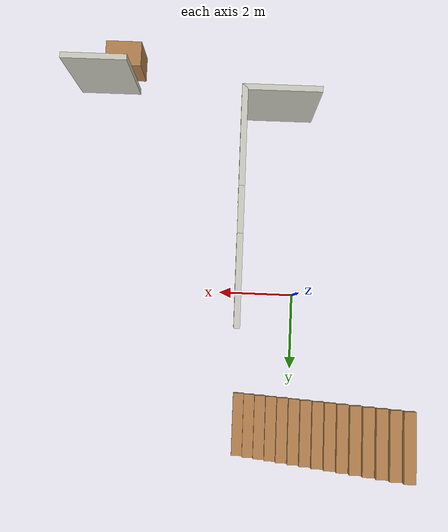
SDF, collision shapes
<sdf version="1.6">
 <model name="teknopark">
  <link name="Stairs_0">
   <inertial>
    <mass>1</mass>
    <inertia><ixx>1</ixx><ixy>0</ixy><ixz>0</ixz><iyy>1</iyy><iyz>0</iyz><izz>1</izz></inertia>
   </inertial>
   <visual name="Stairs_0_Visual_1">
    <pose>1.08758 3.51237 0.25 0 0 -1.5708</pose>
    <geometry><box><size>1.64 0.285333 0.166667</size></box></geometry>
    <material>
     <script><uri>file://media/materials/scripts/gazebo.material</uri><name>Gazebo/WoodFloor</name></script>
     <ambient>1 1 1 1</ambient>
     <diffuse>0.7 0.7 0.7 1</diffuse>
     <specular>0.01 0.01 0.01 1</specular>
     <emissive>0 0 0 1</emissive>
     <shader type="vertex"><normal_map>__default__</normal_map></shader>
    </material>
   </visual>
   <visual name="Stairs_0_Visual_14">
    <pose>-2.62175 3.51237 2.41667 0 0 -1.5708</pose>
    <geometry><box><size>1.64 0.285333 0.166667</size></box></geometry>
    <material>
     <script><uri>file://media/materials/scripts/gazebo.material</uri><name>Gazebo/WoodFloor</name></script>
     <ambient>1 1 1 1</ambient>
     <diffuse>0.7 0.7 0.7 1</diffuse>
     <specular>0.01 0.01 0.01 1</specular>
     <emissive>0 0 0 1</emissive>
     <shader type="vertex"><normal_map>__default__</normal_map></shader>
    </material>
   </visual>
   <visual name="Stairs_0_Visual_2">
    <pose>0.802247 3.51237 0.416667 0 0 -1.5708</pose>
    <geometry><box><size>1.64 0.285333 0.166667</size></box></geometry>
    <material>
     <script><uri>file://media/materials/scripts/gazebo.material</uri><name>Gazebo/WoodFloor</name></script>
     <ambient>1 1 1 1</ambient>
     <diffuse>0.7 0.7 0.7 1</diffuse>
     <specular>0.01 0.01 0.01 1</specular>
     <emissive>0 0 0 1</emissive>
     <shader type="vertex"><normal_map>__default__</normal_map></shader>
    </material>
   </visual>
   <visual name="Stairs_0_Visual_13">
    <pose>-2.33642 3.51237 2.25 0 0 -1.5708</pose>
    <geometry><box><size>1.64 0.285333 0.166667</size></box></geometry>
    <material>
     <script><uri>file://media/materials/scripts/gazebo.material</uri><name>Gazebo/WoodFloor</name></script>
     <ambient>1 1 1 1</ambient>
     <diffuse>0.7 0.7 0.7 1</diffuse>
     <specular>0.01 0.01 0.01 1</specular>
     <emissive>0 0 0 1</emissive>
     <shader type="vertex"><normal_map>__default__</normal_map></shader>
    </material>
   </visual>
   <visual name="Stairs_0_Visual_7">
    <pose>-0.62442 3.51237 1.25 0 0 -1.5708</pose>
    <geometry><box><size>1.64 0.285333 0.166667</size></box></geometry>
    <material>
     <script><uri>file://media/materials/scripts/gazebo.material</uri><name>Gazebo/WoodFloor</name></script>
     <ambient>1 1 1 1</ambient>
     <diffuse>0.7 0.7 0.7 1</diffuse>
     <specular>0.01 0.01 0.01 1</specular>
     <emissive>0 0 0 1</emissive>
     <shader type="vertex"><normal_map>__default__</normal_map></shader>
    </material>
   </visual>
   <visual name="Stairs_0_Visual_4">
    <pose>0.23158 3.51237 0.75 0 0 -1.5708</pose>
    <geometry><box><size>1.64 0.285333 0.166667</size></box></geometry>
    <material>
     <script><uri>file://media/materials/scripts/gazebo.material</uri><name>Gazebo/WoodFloor</name></script>
     <ambient>1 1 1 1</ambient>
     <diffuse>0.7 0.7 0.7 1</diffuse>
     <specular>0.01 0.01 0.01 1</specular>
     <emissive>0 0 0 1</emissive>
     <shader type="vertex"><normal_map>__default__</normal_map></shader>
    </material>
   </visual>
   <visual name="Stairs_0_Visual_3">
    <pose>0.516914 3.51237 0.583333 0 0 -1.5708</pose>
    <geometry><box><size>1.64 0.285333 0.166667</size></box></geometry>
    <material>
     <script><uri>file://media/materials/scripts/gazebo.material</uri><name>Gazebo/WoodFloor</name></script>
     <ambient>1 1 1 1</ambient>
     <diffuse>0.7 0.7 0.7 1</diffuse>
     <specular>0.01 0.01 0.01 1</specular>
     <emissive>0 0 0 1</emissive>
     <shader type="vertex"><normal_map>__default__</normal_map></shader>
    </material>
   </visual>
   <visual name="Stairs_0_Visual_10">
    <pose>-1.48042 3.51237 1.75 0 0 -1.5708</pose>
    <geometry><box><size>1.64 0.285333 0.166667</size></box></geometry>
    <material>
     <script><uri>file://media/materials/scripts/gazebo.material</uri><name>Gazebo/WoodFloor</name></script>
     <ambient>1 1 1 1</ambient>
     <diffuse>0.7 0.7 0.7 1</diffuse>
     <specular>0.01 0.01 0.01 1</specular>
     <emissive>0 0 0 1</emissive>
     <shader type="vertex"><normal_map>__default__</normal_map></shader>
    </material>
   </visual>
   <visual name="Stairs_0_Visual_11">
    <pose>-1.76575 3.51237 1.91667 0 0 -1.5708</pose>
    <geometry><box><size>1.64 0.285333 0.166667</size></box></geometry>
    <material>
     <script><uri>file://media/materials/scripts/gazebo.material</uri><name>Gazebo/WoodFloor</name></script>
     <ambient>1 1 1 1</ambient>
     <diffuse>0.7 0.7 0.7 1</diffuse>
     <specular>0.01 0.01 0.01 1</specular>
     <emissive>0 0 0 1</emissive>
     <shader type="vertex"><normal_map>__default__</normal_map></shader>
    </material>
   </visual>
   <visual name="Stairs_0_Visual_12">
    <pose>-2.05109 3.51237 2.08333 0 0 -1.5708</pose>
    <geometry><box><size>1.64 0.285333 0.166667</size></box></geometry>
    <material>
     <script><uri>file://media/materials/scripts/gazebo.material</uri><name>Gazebo/WoodFloor</name></script>
     <ambient>1 1 1 1</ambient>
     <diffuse>0.7 0.7 0.7 1</diffuse>
     <specular>0.01 0.01 0.01 1</specular>
     <emissive>0 0 0 1</emissive>
     <shader type="vertex"><normal_map>__default__</normal_map></shader>
    </material>
   </visual>
   <visual name="Stairs_0_Visual_9">
    <pose>-1.19509 3.51237 1.58333 0 0 -1.5708</pose>
    <geometry><box><size>1.64 0.285333 0.166667</size></box></geometry>
    <material>
     <script><uri>file://media/materials/scripts/gazebo.material</uri><name>Gazebo/WoodFloor</name></script>
     <ambient>1 1 1 1</ambient>
     <diffuse>0.7 0.7 0.7 1</diffuse>
     <specular>0.01 0.01 0.01 1</specular>
     <emissive>0 0 0 1</emissive>
     <shader type="vertex"><normal_map>__default__</normal_map></shader>
    </material>
   </visual>
   <visual name="Stairs_0_Visual_5">
    <pose>-0.053754 3.51237 0.916667 0 0 -1.5708</pose>
    <geometry><box><size>1.64 0.285333 0.166667</size></box></geometry>
    <material>
     <script><uri>file://media/materials/scripts/gazebo.material</uri><name>Gazebo/WoodFloor</name></script>
     <ambient>1 1 1 1</ambient>
     <diffuse>0.7 0.7 0.7 1</diffuse>
     <specular>0.01 0.01 0.01 1</specular>
     <emissive>0 0 0 1</emissive>
     <shader type="vertex"><normal_map>__default__</normal_map></shader>
    </material>
   </visual>
   <visual name="Stairs_0_Visual_6">
    <pose>-0.339086 3.51237 1.08333 0 0 -1.5708</pose>
    <geometry><box><size>1.64 0.285333 0.166667</size></box></geometry>
    <material>
     <script><uri>file://media/materials/scripts/gazebo.material</uri><name>Gazebo/WoodFloor</name></script>
     <ambient>1 1 1 1</ambient>
     <diffuse>0.7 0.7 0.7 1</diffuse>
     <specular>0.01 0.01 0.01 1</specular>
     <emissive>0 0 0 1</emissive>
     <shader type="vertex"><normal_map>__default__</normal_map></shader>
    </material>
   </visual>
   <visual name="Stairs_0_Visual_0">
    <pose>1.37291 3.51237 0.083333 0 0 -1.5708</pose>
    <geometry><box><size>1.64 0.285333 0.166667</size></box></geometry>
    <material>
     <script><uri>file://media/materials/scripts/gazebo.material</uri><name>Gazebo/WoodFloor</name></script>
     <ambient>1 1 1 1</ambient>
     <diffuse>0.7 0.7 0.7 1</diffuse>
     <specular>0.01 0.01 0.01 1</specular>
     <emissive>0 0 0 1</emissive>
     <shader type="vertex"><normal_map>__default__</normal_map></shader>
    </material>
   </visual>
   <visual name="Stairs_0_Visual_8">
    <pose>-0.909754 3.51237 1.41667 0 0 -1.5708</pose>
    <geometry><box><size>1.64 0.285333 0.166667</size></box></geometry>
    <material>
     <script><uri>file://media/materials/scripts/gazebo.material</uri><name>Gazebo/WoodFloor</name></script>
     <ambient>1 1 1 1</ambient>
     <diffuse>0.7 0.7 0.7 1</diffuse>
     <specular>0.01 0.01 0.01 1</specular>
     <emissive>0 0 0 1</emissive>
     <shader type="vertex"><normal_map>__default__</normal_map></shader>
    </material>
   </visual>
   <collision name="Stairs_0_Collision_11">
    <pose>-1.76575 3.51237 1.91667 0 0 -1.5708</pose>
    <geometry><box><size>1.64 0.285333 0.166667</size></box></geometry>
    <surface>
     <friction>
      <ode><mu>1</mu><mu2>1</mu2><fdir1>0 0 0</fdir1><slip1>0</slip1><slip2>0</slip2></ode>
      <torsional>
       <coefficient>1</coefficient>
       <patch_radius>0</patch_radius>
       <surface_radius>0</surface_radius>
       <use_patch_radius>1</use_patch_radius>
       <ode><slip>0</slip></ode>
      </torsional>
     </friction>
     <bounce><restitution_coefficient>0</restitution_coefficient><threshold>1e+06</threshold></bounce>
     <contact>
      <collide_without_contact>0</collide_without_contact>
      <collide_without_contact_bitmask>1</collide_without_contact_bitmask>
      <collide_bitmask>1</collide_bitmask>
      <ode>
       <soft_cfm>0</soft_cfm>
       <soft_erp>0.2</soft_erp>
       <kp>1e+13</kp>
       <kd>1</kd>
       <max_vel>0.01</max_vel>
       <min_depth>0</min_depth>
      </ode>
      <bullet>
       <split_impulse>1</split_impulse>
       <split_impulse_penetration_threshold>-0.01</split_impulse_penetration_threshold>
       <soft_cfm>0</soft_cfm>
       <soft_erp>0.2</soft_erp>
       <kp>1e+13</kp>
       <kd>1</kd>
      </bullet>
     </contact>
    </surface>
   </collision>
   <collision name="Stairs_0_Collision_0">
    <pose>1.37291 3.51237 0.083333 0 0 -1.5708</pose>
    <geometry><box><size>1.64 0.285333 0.166667</size></box></geometry>
    <surface>
     <friction>
      <ode><mu>1</mu><mu2>1</mu2><fdir1>0 0 0</fdir1><slip1>0</slip1><slip2>0</slip2></ode>
      <torsional>
       <coefficient>1</coefficient>
       <patch_radius>0</patch_radius>
       <surface_radius>0</surface_radius>
       <use_patch_radius>1</use_patch_radius>
       <ode><slip>0</slip></ode>
      </torsional>
     </friction>
     <bounce><restitution_coefficient>0</restitution_coefficient><threshold>1e+06</threshold></bounce>
     <contact>
      <collide_without_contact>0</collide_without_contact>
      <collide_without_contact_bitmask>1</collide_without_contact_bitmask>
      <collide_bitmask>1</collide_bitmask>
      <ode>
       <soft_cfm>0</soft_cfm>
       <soft_erp>0.2</soft_erp>
       <kp>1e+13</kp>
       <kd>1</kd>
       <max_vel>0.01</max_vel>
       <min_depth>0</min_depth>
      </ode>
      <bullet>
       <split_impulse>1</split_impulse>
       <split_impulse_penetration_threshold>-0.01</split_impulse_penetration_threshold>
       <soft_cfm>0</soft_cfm>
       <soft_erp>0.2</soft_erp>
       <kp>1e+13</kp>
       <kd>1</kd>
      </bullet>
     </contact>
    </surface>
   </collision>
   <collision name="Stairs_0_Collision_1">
    <pose>1.08758 3.51237 0.25 0 0 -1.5708</pose>
    <geometry><box><size>1.64 0.285333 0.166667</size></box></geometry>
    <surface>
     <friction>
      <ode><mu>1</mu><mu2>1</mu2><fdir1>0 0 0</fdir1><slip1>0</slip1><slip2>0</slip2></ode>
      <torsional>
       <coefficient>1</coefficient>
       <patch_radius>0</patch_radius>
       <surface_radius>0</surface_radius>
       <use_patch_radius>1</use_patch_radius>
       <ode><slip>0</slip></ode>
      </torsional>
     </friction>
     <bounce><restitution_coefficient>0</restitution_coefficient><threshold>1e+06</threshold></bounce>
     <contact>
      <collide_without_contact>0</collide_without_contact>
      <collide_without_contact_bitmask>1</collide_without_contact_bitmask>
      <collide_bitmask>1</collide_bitmask>
      <ode>
       <soft_cfm>0</soft_cfm>
       <soft_erp>0.2</soft_erp>
       <kp>1e+13</kp>
       <kd>1</kd>
       <max_vel>0.01</max_vel>
       <min_depth>0</min_depth>
      </ode>
      <bullet>
       <split_impulse>1</split_impulse>
       <split_impulse_penetration_threshold>-0.01</split_impulse_penetration_threshold>
       <soft_cfm>0</soft_cfm>
       <soft_erp>0.2</soft_erp>
       <kp>1e+13</kp>
       <kd>1</kd>
      </bullet>
     </contact>
    </surface>
   </collision>
   <collision name="Stairs_0_Collision_7">
    <pose>-0.62442 3.51237 1.25 0 0 -1.5708</pose>
    <geometry><box><size>1.64 0.285333 0.166667</size></box></geometry>
    <surface>
     <friction>
      <ode><mu>1</mu><mu2>1</mu2><fdir1>0 0 0</fdir1><slip1>0</slip1><slip2>0</slip2></ode>
      <torsional>
       <coefficient>1</coefficient>
       <patch_radius>0</patch_radius>
       <surface_radius>0</surface_radius>
       <use_patch_radius>1</use_patch_radius>
       <ode><slip>0</slip></ode>
      </torsional>
     </friction>
     <bounce><restitution_coefficient>0</restitution_coefficient><threshold>1e+06</threshold></bounce>
     <contact>
      <collide_without_contact>0</collide_without_contact>
      <collide_without_contact_bitmask>1</collide_without_contact_bitmask>
      <collide_bitmask>1</collide_bitmask>
      <ode>
       <soft_cfm>0</soft_cfm>
       <soft_erp>0.2</soft_erp>
       <kp>1e+13</kp>
       <kd>1</kd>
       <max_vel>0.01</max_vel>
       <min_depth>0</min_depth>
      </ode>
      <bullet>
       <split_impulse>1</split_impulse>
       <split_impulse_penetration_threshold>-0.01</split_impulse_penetration_threshold>
       <soft_cfm>0</soft_cfm>
       <soft_erp>0.2</soft_erp>
       <kp>1e+13</kp>
       <kd>1</kd>
      </bullet>
     </contact>
    </surface>
   </collision>
   <collision name="Stairs_0_Collision_8">
    <pose>-0.909754 3.51237 1.41667 0 0 -1.5708</pose>
    <geometry><box><size>1.64 0.285333 0.166667</size></box></geometry>
    <surface>
     <friction>
      <ode><mu>1</mu><mu2>1</mu2><fdir1>0 0 0</fdir1><slip1>0</slip1><slip2>0</slip2></ode>
      <torsional>
       <coefficient>1</coefficient>
       <patch_radius>0</patch_radius>
       <surface_radius>0</surface_radius>
       <use_patch_radius>1</use_patch_radius>
       <ode><slip>0</slip></ode>
      </torsional>
     </friction>
     <bounce><restitution_coefficient>0</restitution_coefficient><threshold>1e+06</threshold></bounce>
     <contact>
      <collide_without_contact>0</collide_without_contact>
      <collide_without_contact_bitmask>1</collide_without_contact_bitmask>
      <collide_bitmask>1</collide_bitmask>
      <ode>
       <soft_cfm>0</soft_cfm>
       <soft_erp>0.2</soft_erp>
       <kp>1e+13</kp>
       <kd>1</kd>
       <max_vel>0.01</max_vel>
       <min_depth>0</min_depth>
      </ode>
      <bullet>
       <split_impulse>1</split_impulse>
       <split_impulse_penetration_threshold>-0.01</split_impulse_penetration_threshold>
       <soft_cfm>0</soft_cfm>
       <soft_erp>0.2</soft_erp>
       <kp>1e+13</kp>
       <kd>1</kd>
      </bullet>
     </contact>
    </surface>
   </collision>
   <collision name="Stairs_0_Collision_12">
    <pose>-2.05109 3.51237 2.08333 0 0 -1.5708</pose>
    <geometry><box><size>1.64 0.285333 0.166667</size></box></geometry>
    <surface>
     <friction>
      <ode><mu>1</mu><mu2>1</mu2><fdir1>0 0 0</fdir1><slip1>0</slip1><slip2>0</slip2></ode>
      <torsional>
       <coefficient>1</coefficient>
       <patch_radius>0</patch_radius>
       <surface_radius>0</surface_radius>
       <use_patch_radius>1</use_patch_radius>
       <ode><slip>0</slip></ode>
      </torsional>
     </friction>
     <bounce><restitution_coefficient>0</restitution_coefficient><threshold>1e+06</threshold></bounce>
     <contact>
      <collide_without_contact>0</collide_without_contact>
      <collide_without_contact_bitmask>1</collide_without_contact_bitmask>
      <collide_bitmask>1</collide_bitmask>
      <ode>
       <soft_cfm>0</soft_cfm>
       <soft_erp>0.2</soft_erp>
       <kp>1e+13</kp>
       <kd>1</kd>
       <max_vel>0.01</max_vel>
       <min_depth>0</min_depth>
      </ode>
      <bullet>
       <split_impulse>1</split_impulse>
       <split_impulse_penetration_threshold>-0.01</split_impulse_penetration_threshold>
       <soft_cfm>0</soft_cfm>
       <soft_erp>0.2</soft_erp>
       <kp>1e+13</kp>
       <kd>1</kd>
      </bullet>
     </contact>
    </surface>
   </collision>
   <collision name="Stairs_0_Collision_3">
    <pose>0.516914 3.51237 0.583333 0 0 -1.5708</pose>
    <geometry><box><size>1.64 0.285333 0.166667</size></box></geometry>
    <surface>
     <friction>
      <ode><mu>1</mu><mu2>1</mu2><fdir1>0 0 0</fdir1><slip1>0</slip1><slip2>0</slip2></ode>
      <torsional>
       <coefficient>1</coefficient>
       <patch_radius>0</patch_radius>
       <surface_radius>0</surface_radius>
       <use_patch_radius>1</use_patch_radius>
       <ode><slip>0</slip></ode>
      </torsional>
     </friction>
     <bounce><restitution_coefficient>0</restitution_coefficient><threshold>1e+06</threshold></bounce>
     <contact>
      <collide_without_contact>0</collide_without_contact>
      <collide_without_contact_bitmask>1</collide_without_contact_bitmask>
      <collide_bitmask>1</collide_bitmask>
      <ode>
       <soft_cfm>0</soft_cfm>
       <soft_erp>0.2</soft_erp>
       <kp>1e+13</kp>
       <kd>1</kd>
       <max_vel>0.01</max_vel>
       <min_depth>0</min_depth>
      </ode>
      <bullet>
       <split_impulse>1</split_impulse>
       <split_impulse_penetration_threshold>-0.01</split_impulse_penetration_threshold>
       <soft_cfm>0</soft_cfm>
       <soft_erp>0.2</soft_erp>
       <kp>1e+13</kp>
       <kd>1</kd>
      </bullet>
     </contact>
    </surface>
   </collision>
   <collision name="Stairs_0_Collision_2">
    <pose>0.802247 3.51237 0.416667 0 0 -1.5708</pose>
    <geometry><box><size>1.64 0.285333 0.166667</size></box></geometry>
    <surface>
     <friction>
      <ode><mu>1</mu><mu2>1</mu2><fdir1>0 0 0</fdir1><slip1>0</slip1><slip2>0</slip2></ode>
      <torsional>
       <coefficient>1</coefficient>
       <patch_radius>0</patch_radius>
       <surface_radius>0</surface_radius>
       <use_patch_radius>1</use_patch_radius>
       <ode><slip>0</slip></ode>
      </torsional>
     </friction>
     <bounce><restitution_coefficient>0</restitution_coefficient><threshold>1e+06</threshold></bounce>
     <contact>
      <collide_without_contact>0</collide_without_contact>
      <collide_without_contact_bitmask>1</collide_without_contact_bitmask>
      <collide_bitmask>1</collide_bitmask>
      <ode>
       <soft_cfm>0</soft_cfm>
       <soft_erp>0.2</soft_erp>
       <kp>1e+13</kp>
       <kd>1</kd>
       <max_vel>0.01</max_vel>
       <min_depth>0</min_depth>
      </ode>
      <bullet>
       <split_impulse>1</split_impulse>
       <split_impulse_penetration_threshold>-0.01</split_impulse_penetration_threshold>
       <soft_cfm>0</soft_cfm>
       <soft_erp>0.2</soft_erp>
       <kp>1e+13</kp>
       <kd>1</kd>
      </bullet>
     </contact>
    </surface>
   </collision>
   <collision name="Stairs_0_Collision_13">
    <pose>-2.33642 3.51237 2.25 0 0 -1.5708</pose>
    <geometry><box><size>1.64 0.285333 0.166667</size></box></geometry>
    <surface>
     <friction>
      <ode><mu>1</mu><mu2>1</mu2><fdir1>0 0 0</fdir1><slip1>0</slip1><slip2>0</slip2></ode>
      <torsional>
       <coefficient>1</coefficient>
       <patch_radius>0</patch_radius>
       <surface_radius>0</surface_radius>
       <use_patch_radius>1</use_patch_radius>
       <ode><slip>0</slip></ode>
      </torsional>
     </friction>
     <bounce><restitution_coefficient>0</restitution_coefficient><threshold>1e+06</threshold></bounce>
     <contact>
      <collide_without_contact>0</collide_without_contact>
      <collide_without_contact_bitmask>1</collide_without_contact_bitmask>
      <collide_bitmask>1</collide_bitmask>
      <ode>
       <soft_cfm>0</soft_cfm>
       <soft_erp>0.2</soft_erp>
       <kp>1e+13</kp>
       <kd>1</kd>
       <max_vel>0.01</max_vel>
       <min_depth>0</min_depth>
      </ode>
      <bullet>
       <split_impulse>1</split_impulse>
       <split_impulse_penetration_threshold>-0.01</split_impulse_penetration_threshold>
       <soft_cfm>0</soft_cfm>
       <soft_erp>0.2</soft_erp>
       <kp>1e+13</kp>
       <kd>1</kd>
      </bullet>
     </contact>
    </surface>
   </collision>
   <collision name="Stairs_0_Collision_14">
    <pose>-2.62175 3.51237 2.41667 0 0 -1.5708</pose>
    <geometry><box><size>1.64 0.285333 0.166667</size></box></geometry>
    <surface>
     <friction>
      <ode><mu>1</mu><mu2>1</mu2><fdir1>0 0 0</fdir1><slip1>0</slip1><slip2>0</slip2></ode>
      <torsional>
       <coefficient>1</coefficient>
       <patch_radius>0</patch_radius>
       <surface_radius>0</surface_radius>
       <use_patch_radius>1</use_patch_radius>
       <ode><slip>0</slip></ode>
      </torsional>
     </friction>
     <bounce><restitution_coefficient>0</restitution_coefficient><threshold>1e+06</threshold></bounce>
     <contact>
      <collide_without_contact>0</collide_without_contact>
      <collide_without_contact_bitmask>1</collide_without_contact_bitmask>
      <collide_bitmask>1</collide_bitmask>
      <ode>
       <soft_cfm>0</soft_cfm>
       <soft_erp>0.2</soft_erp>
       <kp>1e+13</kp>
       <kd>1</kd>
       <max_vel>0.01</max_vel>
       <min_depth>0</min_depth>
      </ode>
      <bullet>
       <split_impulse>1</split_impulse>
       <split_impulse_penetration_threshold>-0.01</split_impulse_penetration_threshold>
       <soft_cfm>0</soft_cfm>
       <soft_erp>0.2</soft_erp>
       <kp>1e+13</kp>
       <kd>1</kd>
      </bullet>
     </contact>
    </surface>
   </collision>
   <collision name="Stairs_0_Collision_5">
    <pose>-0.053754 3.51237 0.916667 0 0 -1.5708</pose>
    <geometry><box><size>1.64 0.285333 0.166667</size></box></geometry>
    <surface>
     <friction>
      <ode><mu>1</mu><mu2>1</mu2><fdir1>0 0 0</fdir1><slip1>0</slip1><slip2>0</slip2></ode>
      <torsional>
       <coefficient>1</coefficient>
       <patch_radius>0</patch_radius>
       <surface_radius>0</surface_radius>
       <use_patch_radius>1</use_patch_radius>
       <ode><slip>0</slip></ode>
      </torsional>
     </friction>
     <bounce><restitution_coefficient>0</restitution_coefficient><threshold>1e+06</threshold></bounce>
     <contact>
      <collide_without_contact>0</collide_without_contact>
      <collide_without_contact_bitmask>1</collide_without_contact_bitmask>
      <collide_bitmask>1</collide_bitmask>
      <ode>
       <soft_cfm>0</soft_cfm>
       <soft_erp>0.2</soft_erp>
       <kp>1e+13</kp>
       <kd>1</kd>
       <max_vel>0.01</max_vel>
       <min_depth>0</min_depth>
      </ode>
      <bullet>
       <split_impulse>1</split_impulse>
       <split_impulse_penetration_threshold>-0.01</split_impulse_penetration_threshold>
       <soft_cfm>0</soft_cfm>
       <soft_erp>0.2</soft_erp>
       <kp>1e+13</kp>
       <kd>1</kd>
      </bullet>
     </contact>
    </surface>
   </collision>
   <collision name="Stairs_0_Collision_6">
    <pose>-0.339086 3.51237 1.08333 0 0 -1.5708</pose>
    <geometry><box><size>1.64 0.285333 0.166667</size></box></geometry>
    <surface>
     <friction>
      <ode><mu>1</mu><mu2>1</mu2><fdir1>0 0 0</fdir1><slip1>0</slip1><slip2>0</slip2></ode>
      <torsional>
       <coefficient>1</coefficient>
       <patch_radius>0</patch_radius>
       <surface_radius>0</surface_radius>
       <use_patch_radius>1</use_patch_radius>
       <ode><slip>0</slip></ode>
      </torsional>
     </friction>
     <bounce><restitution_coefficient>0</restitution_coefficient><threshold>1e+06</threshold></bounce>
     <contact>
      <collide_without_contact>0</collide_without_contact>
      <collide_without_contact_bitmask>1</collide_without_contact_bitmask>
      <collide_bitmask>1</collide_bitmask>
      <ode>
       <soft_cfm>0</soft_cfm>
       <soft_erp>0.2</soft_erp>
       <kp>1e+13</kp>
       <kd>1</kd>
       <max_vel>0.01</max_vel>
       <min_depth>0</min_depth>
      </ode>
      <bullet>
       <split_impulse>1</split_impulse>
       <split_impulse_penetration_threshold>-0.01</split_impulse_penetration_threshold>
       <soft_cfm>0</soft_cfm>
       <soft_erp>0.2</soft_erp>
       <kp>1e+13</kp>
       <kd>1</kd>
      </bullet>
     </contact>
    </surface>
   </collision>
   <collision name="Stairs_0_Collision_10">
    <pose>-1.48042 3.51237 1.75 0 0 -1.5708</pose>
    <geometry><box><size>1.64 0.285333 0.166667</size></box></geometry>
    <surface>
     <friction>
      <ode><mu>1</mu><mu2>1</mu2><fdir1>0 0 0</fdir1><slip1>0</slip1><slip2>0</slip2></ode>
      <torsional>
       <coefficient>1</coefficient>
       <patch_radius>0</patch_radius>
       <surface_radius>0</surface_radius>
       <use_patch_radius>1</use_patch_radius>
       <ode><slip>0</slip></ode>
      </torsional>
     </friction>
     <bounce><restitution_coefficient>0</restitution_coefficient><threshold>1e+06</threshold></bounce>
     <contact>
      <collide_without_contact>0</collide_without_contact>
      <collide_without_contact_bitmask>1</collide_without_contact_bitmask>
      <collide_bitmask>1</collide_bitmask>
      <ode>
       <soft_cfm>0</soft_cfm>
       <soft_erp>0.2</soft_erp>
       <kp>1e+13</kp>
       <kd>1</kd>
       <max_vel>0.01</max_vel>
       <min_depth>0</min_depth>
      </ode>
      <bullet>
       <split_impulse>1</split_impulse>
       <split_impulse_penetration_threshold>-0.01</split_impulse_penetration_threshold>
       <soft_cfm>0</soft_cfm>
       <soft_erp>0.2</soft_erp>
       <kp>1e+13</kp>
       <kd>1</kd>
      </bullet>
     </contact>
    </surface>
   </collision>
   <collision name="Stairs_0_Collision_9">
    <pose>-1.19509 3.51237 1.58333 0 0 -1.5708</pose>
    <geometry><box><size>1.64 0.285333 0.166667</size></box></geometry>
    <surface>
     <friction>
      <ode><mu>1</mu><mu2>1</mu2><fdir1>0 0 0</fdir1><slip1>0</slip1><slip2>0</slip2></ode>
      <torsional>
       <coefficient>1</coefficient>
       <patch_radius>0</patch_radius>
       <surface_radius>0</surface_radius>
       <use_patch_radius>1</use_patch_radius>
       <ode><slip>0</slip></ode>
      </torsional>
     </friction>
     <bounce><restitution_coefficient>0</restitution_coefficient><threshold>1e+06</threshold></bounce>
     <contact>
      <collide_without_contact>0</collide_without_contact>
      <collide_without_contact_bitmask>1</collide_without_contact_bitmask>
      <collide_bitmask>1</collide_bitmask>
      <ode>
       <soft_cfm>0</soft_cfm>
       <soft_erp>0.2</soft_erp>
       <kp>1e+13</kp>
       <kd>1</kd>
       <max_vel>0.01</max_vel>
       <min_depth>0</min_depth>
      </ode>
      <bullet>
       <split_impulse>1</split_impulse>
       <split_impulse_penetration_threshold>-0.01</split_impulse_penetration_threshold>
       <soft_cfm>0</soft_cfm>
       <soft_erp>0.2</soft_erp>
       <kp>1e+13</kp>
       <kd>1</kd>
      </bullet>
     </contact>
    </surface>
   </collision>
   <collision name="Stairs_0_Collision_4">
    <pose>0.23158 3.51237 0.75 0 0 -1.5708</pose>
    <geometry><box><size>1.64 0.285333 0.166667</size></box></geometry>
    <surface>
     <friction>
      <ode><mu>1</mu><mu2>1</mu2><fdir1>0 0 0</fdir1><slip1>0</slip1><slip2>0</slip2></ode>
      <torsional>
       <coefficient>1</coefficient>
       <patch_radius>0</patch_radius>
       <surface_radius>0</surface_radius>
       <use_patch_radius>1</use_patch_radius>
       <ode><slip>0</slip></ode>
      </torsional>
     </friction>
     <bounce><restitution_coefficient>0</restitution_coefficient><threshold>1e+06</threshold></bounce>
     <contact>
      <collide_without_contact>0</collide_without_contact>
      <collide_without_contact_bitmask>1</collide_without_contact_bitmask>
      <collide_bitmask>1</collide_bitmask>
      <ode>
       <soft_cfm>0</soft_cfm>
       <soft_erp>0.2</soft_erp>
       <kp>1e+13</kp>
       <kd>1</kd>
       <max_vel>0.01</max_vel>
       <min_depth>0</min_depth>
      </ode>
      <bullet>
       <split_impulse>1</split_impulse>
       <split_impulse_penetration_threshold>-0.01</split_impulse_penetration_threshold>
       <soft_cfm>0</soft_cfm>
       <soft_erp>0.2</soft_erp>
       <kp>1e+13</kp>
       <kd>1</kd>
      </bullet>
     </contact>
    </surface>
   </collision>
  </link>
  <link name="Wall_17">
   <pose>5.29992 -5.6595 0 0 -0 3.14159</pose>
   <inertial>
    <mass>1</mass>
    <inertia><ixx>1</ixx><ixy>0</ixy><ixz>0</ixz><iyy>1</iyy><iyz>0</iyz><izz>1</izz></inertia>
   </inertial>
   <visual name="Wall_17_Visual">
    <pose>0 0 1.25 0 -0 0</pose>
    <geometry><box><size>1.668 0.15 2.5</size></box></geometry>
    <material>
     <script><uri>file://media/materials/scripts/gazebo.material</uri><name>Gazebo/PaintedWall</name></script>
     <ambient>1 1 1 1</ambient>
     <diffuse>0.7 0.7 0.7 1</diffuse>
     <specular>0.01 0.01 0.01 1</specular>
     <emissive>0 0 0 1</emissive>
     <shader type="vertex"><normal_map>__default__</normal_map></shader>
    </material>
   </visual>
   <visual name="ModelPreview_3::Wall_17::visual_1">
    <pose>0 0 1.25 0 -0 0</pose>
    <geometry><box><size>1.668 0.15 2.5</size></box></geometry>
    <material>
     <script><uri>file://media/materials/scripts/gazebo.material</uri><name>Gazebo/Grey</name></script>
     <ambient>1 1 1 1</ambient>
     <diffuse>0.7 0.7 0.7 1</diffuse>
     <specular>0.01 0.01 0.01 1</specular>
     <emissive>0 0 0 1</emissive>
     <shader type="vertex"><normal_map>__default__</normal_map></shader>
    </material>
   </visual>
   <collision name="Wall_17_Collision">
    <pose>0 0 1.25 0 -0 0</pose>
    <geometry><box><size>1.668 0.15 2.5</size></box></geometry>
    <surface>
     <friction>
      <ode><mu>1</mu><mu2>1</mu2><fdir1>0 0 0</fdir1><slip1>0</slip1><slip2>0</slip2></ode>
      <torsional>
       <coefficient>1</coefficient>
       <patch_radius>0</patch_radius>
       <surface_radius>0</surface_radius>
       <use_patch_radius>1</use_patch_radius>
       <ode><slip>0</slip></ode>
      </torsional>
     </friction>
     <bounce><restitution_coefficient>0</restitution_coefficient><threshold>1e+06</threshold></bounce>
     <contact>
      <collide_without_contact>0</collide_without_contact>
      <collide_without_contact_bitmask>1</collide_without_contact_bitmask>
      <collide_bitmask>1</collide_bitmask>
      <ode>
       <soft_cfm>0</soft_cfm>
       <soft_erp>0.2</soft_erp>
       <kp>1e+13</kp>
       <kd>1</kd>
       <max_vel>0.01</max_vel>
       <min_depth>0</min_depth>
      </ode>
      <bullet>
       <split_impulse>1</split_impulse>
       <split_impulse_penetration_threshold>-0.01</split_impulse_penetration_threshold>
       <soft_cfm>0</soft_cfm>
       <soft_erp>0.2</soft_erp>
       <kp>1e+13</kp>
       <kd>1</kd>
      </bullet>
     </contact>
    </surface>
   </collision>
  </link>
  <link name="Wall_52">
   <pose>1.49848 -2.08961 0 0 0 -1.5708</pose>
   <inertial>
    <mass>1</mass>
    <inertia><ixx>1</ixx><ixy>0</ixy><ixz>0</ixz><iyy>1</iyy><iyz>0</iyz><izz>1</izz></inertia>
   </inertial>
   <visual name="Wall_52_Visual_0">
    <pose>-1.86092 0 1.25 0 -0 0</pose>
    <geometry><box><size>2.27815 0.15 2.5</size></box></geometry>
    <material>
     <script><uri>file://media/materials/scripts/gazebo.material</uri><name>Gazebo/PaintedWall</name></script>
     <ambient>1 1 1 1</ambient>
     <diffuse>0.7 0.7 0.7 1</diffuse>
     <specular>0.01 0.01 0.01 1</specular>
     <emissive>0 0 0 1</emissive>
     <shader type="vertex"><normal_map>__default__</normal_map></shader>
    </material>
   </visual>
   <visual name="Wall_52_Visual_1">
    <pose>1.72058 0 1.25 0 -0 0</pose>
    <geometry><box><size>2.55884 0.15 2.5</size></box></geometry>
    <material>
     <script><uri>file://media/materials/scripts/gazebo.material</uri><name>Gazebo/PaintedWall</name></script>
     <ambient>1 1 1 1</ambient>
     <diffuse>0.7 0.7 0.7 1</diffuse>
     <specular>0.01 0.01 0.01 1</specular>
     <emissive>0 0 0 1</emissive>
     <shader type="vertex"><normal_map>__default__</normal_map></shader>
    </material>
   </visual>
   <visual name="Wall_52_Door">
    <pose>-0.140342 0 0 0 -0 0</pose>
    <geometry>
     <mesh><uri>model://teknopark/meshes/Door_Component_BI3.dae</uri><scale>1.2 1 1</scale></mesh>
    </geometry>
    <material>
     <ambient>0.5 0.5 0.5 1</ambient>
     <diffuse>1 1 1 1</diffuse>
     <specular>0 0 0 1</specular>
     <emissive>0 0 0 1</emissive>
     <script><name>Gazebo/WoodPallet</name><uri>__default__</uri></script>
     <shader type="vertex"><normal_map>__default__</normal_map></shader>
    </material>
   </visual>
   <visual name="Wall_52_Visual_2">
    <pose>-0.140342 0 2.25 0 -0 0</pose>
    <geometry><box><size>1.16301 0.15 0.5</size></box></geometry>
    <material>
     <script><uri>file://media/materials/scripts/gazebo.material</uri><name>Gazebo/PaintedWall</name></script>
     <ambient>1 1 1 1</ambient>
     <diffuse>0.7 0.7 0.7 1</diffuse>
     <specular>0.01 0.01 0.01 1</specular>
     <emissive>0 0 0 1</emissive>
     <shader type="vertex"><normal_map>__default__</normal_map></shader>
    </material>
   </visual>
   <visual name="ModelPreview_3::Wall_52::visual_3">
    <pose>1.72058 0 1.25 0 -0 0</pose>
    <geometry><box><size>2.55884 0.15 2.5</size></box></geometry>
    <material>
     <script><uri>file://media/materials/scripts/gazebo.material</uri><name>Gazebo/PaintedWall</name></script>
     <ambient>1 1 1 1</ambient>
     <diffuse>0.7 0.7 0.7 1</diffuse>
     <specular>0.01 0.01 0.01 1</specular>
     <emissive>0 0 0 1</emissive>
     <shader type="vertex"><normal_map>__default__</normal_map></shader>
    </material>
   </visual>
   <collision name="Wall_52_Collision_0">
    <pose>-1.86092 0 1.25 0 -0 0</pose>
    <geometry><box><size>2.27815 0.15 2.5</size></box></geometry>
    <surface>
     <friction>
      <ode><mu>1</mu><mu2>1</mu2><fdir1>0 0 0</fdir1><slip1>0</slip1><slip2>0</slip2></ode>
      <torsional>
       <coefficient>1</coefficient>
       <patch_radius>0</patch_radius>
       <surface_radius>0</surface_radius>
       <use_patch_radius>1</use_patch_radius>
       <ode><slip>0</slip></ode>
      </torsional>
     </friction>
     <bounce><restitution_coefficient>0</restitution_coefficient><threshold>1e+06</threshold></bounce>
     <contact>
      <collide_without_contact>0</collide_without_contact>
      <collide_without_contact_bitmask>1</collide_without_contact_bitmask>
      <collide_bitmask>1</collide_bitmask>
      <ode>
       <soft_cfm>0</soft_cfm>
       <soft_erp>0.2</soft_erp>
       <kp>1e+13</kp>
       <kd>1</kd>
       <max_vel>0.01</max_vel>
       <min_depth>0</min_depth>
      </ode>
      <bullet>
       <split_impulse>1</split_impulse>
       <split_impulse_penetration_threshold>-0.01</split_impulse_penetration_threshold>
       <soft_cfm>0</soft_cfm>
       <soft_erp>0.2</soft_erp>
       <kp>1e+13</kp>
       <kd>1</kd>
      </bullet>
     </contact>
    </surface>
   </collision>
   <collision name="Wall_52_Collision_2">
    <pose>-0.140342 0 2.25 0 -0 0</pose>
    <geometry><box><size>1.16301 0.15 0.5</size></box></geometry>
    <surface>
     <friction>
      <ode><mu>1</mu><mu2>1</mu2><fdir1>0 0 0</fdir1><slip1>0</slip1><slip2>0</slip2></ode>
      <torsional>
       <coefficient>1</coefficient>
       <patch_radius>0</patch_radius>
       <surface_radius>0</surface_radius>
       <use_patch_radius>1</use_patch_radius>
       <ode><slip>0</slip></ode>
      </torsional>
     </friction>
     <bounce><restitution_coefficient>0</restitution_coefficient><threshold>1e+06</threshold></bounce>
     <contact>
      <collide_without_contact>0</collide_without_contact>
      <collide_without_contact_bitmask>1</collide_without_contact_bitmask>
      <collide_bitmask>1</collide_bitmask>
      <ode>
       <soft_cfm>0</soft_cfm>
       <soft_erp>0.2</soft_erp>
       <kp>1e+13</kp>
       <kd>1</kd>
       <max_vel>0.01</max_vel>
       <min_depth>0</min_depth>
      </ode>
      <bullet>
       <split_impulse>1</split_impulse>
       <split_impulse_penetration_threshold>-0.01</split_impulse_penetration_threshold>
       <soft_cfm>0</soft_cfm>
       <soft_erp>0.2</soft_erp>
       <kp>1e+13</kp>
       <kd>1</kd>
      </bullet>
     </contact>
    </surface>
   </collision>
   <collision name="Wall_52_Collision_1">
    <pose>1.72058 0 1.25 0 -0 0</pose>
    <geometry><box><size>2.55884 0.15 2.5</size></box></geometry>
    <surface>
     <friction>
      <ode><mu>1</mu><mu2>1</mu2><fdir1>0 0 0</fdir1><slip1>0</slip1><slip2>0</slip2></ode>
      <torsional>
       <coefficient>1</coefficient>
       <patch_radius>0</patch_radius>
       <surface_radius>0</surface_radius>
       <use_patch_radius>1</use_patch_radius>
       <ode><slip>0</slip></ode>
      </torsional>
     </friction>
     <bounce><restitution_coefficient>0</restitution_coefficient><threshold>1e+06</threshold></bounce>
     <contact>
      <collide_without_contact>0</collide_without_contact>
      <collide_without_contact_bitmask>1</collide_without_contact_bitmask>
      <collide_bitmask>1</collide_bitmask>
      <ode>
       <soft_cfm>0</soft_cfm>
       <soft_erp>0.2</soft_erp>
       <kp>1e+13</kp>
       <kd>1</kd>
       <max_vel>0.01</max_vel>
       <min_depth>0</min_depth>
      </ode>
      <bullet>
       <split_impulse>1</split_impulse>
       <split_impulse_penetration_threshold>-0.01</split_impulse_penetration_threshold>
       <soft_cfm>0</soft_cfm>
       <soft_erp>0.2</soft_erp>
       <kp>1e+13</kp>
       <kd>1</kd>
      </bullet>
     </contact>
    </surface>
   </collision>
  </link>
  <link name="Wall_53">
   <pose>0.573704 -5.01455 0 0 -0 3.14154</pose>
   <inertial>
    <mass>1</mass>
    <inertia><ixx>1</ixx><ixy>0</ixy><ixz>0</ixz><iyy>1</iyy><iyz>0</iyz><izz>1</izz></inertia>
   </inertial>
   <visual name="Wall_53_Visual">
    <pose>0 0 1.25 0 -0 0</pose>
    <geometry><box><size>2 0.15 2.5</size></box></geometry>
    <material>
     <script><uri>file://media/materials/scripts/gazebo.material</uri><name>Gazebo/PaintedWall</name></script>
     <ambient>1 1 1 1</ambient>
     <diffuse>0.7 0.7 0.7 1</diffuse>
     <specular>0.01 0.01 0.01 1</specular>
     <emissive>0 0 0 1</emissive>
     <shader type="vertex"><normal_map>__default__</normal_map></shader>
    </material>
   </visual>
   <visual name="ModelPreview_3::Wall_53::visual_1">
    <pose>0 0 1.25 0 -0 0</pose>
    <geometry><box><size>2 0.15 2.5</size></box></geometry>
    <material>
     <script><uri>file://media/materials/scripts/gazebo.material</uri><name>Gazebo/PaintedWall</name></script>
     <ambient>1 1 1 1</ambient>
     <diffuse>0.7 0.7 0.7 1</diffuse>
     <specular>0.01 0.01 0.01 1</specular>
     <emissive>0 0 0 1</emissive>
     <shader type="vertex"><normal_map>__default__</normal_map></shader>
    </material>
   </visual>
   <collision name="Wall_53_Collision">
    <pose>0 0 1.25 0 -0 0</pose>
    <geometry><box><size>2 0.15 2.5</size></box></geometry>
    <surface>
     <friction>
      <ode><mu>1</mu><mu2>1</mu2><fdir1>0 0 0</fdir1><slip1>0</slip1><slip2>0</slip2></ode>
      <torsional>
       <coefficient>1</coefficient>
       <patch_radius>0</patch_radius>
       <surface_radius>0</surface_radius>
       <use_patch_radius>1</use_patch_radius>
       <ode><slip>0</slip></ode>
      </torsional>
     </friction>
     <bounce><restitution_coefficient>0</restitution_coefficient><threshold>1e+06</threshold></bounce>
     <contact>
      <collide_without_contact>0</collide_without_contact>
      <collide_without_contact_bitmask>1</collide_without_contact_bitmask>
      <collide_bitmask>1</collide_bitmask>
      <ode>
       <soft_cfm>0</soft_cfm>
       <soft_erp>0.2</soft_erp>
       <kp>1e+13</kp>
       <kd>1</kd>
       <max_vel>0.01</max_vel>
       <min_depth>0</min_depth>
      </ode>
      <bullet>
       <split_impulse>1</split_impulse>
       <split_impulse_penetration_threshold>-0.01</split_impulse_penetration_threshold>
       <soft_cfm>0</soft_cfm>
       <soft_erp>0.2</soft_erp>
       <kp>1e+13</kp>
       <kd>1</kd>
      </bullet>
     </contact>
    </surface>
   </collision>
  </link>
  <link name="link_1">
   <pose>4.92218 -6.55006 0 1.57 0 1.57</pose>
   <inertial>
    <mass>1</mass>
    <inertia>
     <ixx>0.166667</ixx>
     <ixy>0</ixy>
     <ixz>0</ixz>
     <iyy>0.166667</iyy>
     <iyz>0</iyz>
     <izz>0.166667</izz>
    </inertia>
   </inertial>
   <visual name="visual">
    <geometry>
     <mesh><uri>model://teknopark/meshes/Computer_Table.dae</uri><scale>0.35 0.4 0.25</scale></mesh>
    </geometry>
    <material>
     <lighting>1</lighting>
     <script><uri>file://media/materials/scripts/gazebo.material</uri><name>Gazebo/Wood</name></script>
     <ambient>0.3 0.3 0.3 1</ambient>
     <diffuse>0.7 0.7 0.7 1</diffuse>
     <specular>0.01 0.01 0.01 1</specular>
     <emissive>0 0 0 1</emissive>
     <shader type="vertex"><normal_map>__default__</normal_map></shader>
    </material>
   </visual>
   <collision name="collision">
    <geometry><box><size>0.7 1.2 1</size></box></geometry>
    <surface>
     <friction>
      <ode><mu>1</mu><mu2>1</mu2><fdir1>0 0 0</fdir1><slip1>0</slip1><slip2>0</slip2></ode>
      <torsional>
       <coefficient>1</coefficient>
       <patch_radius>0</patch_radius>
       <surface_radius>0</surface_radius>
       <use_patch_radius>1</use_patch_radius>
       <ode><slip>0</slip></ode>
      </torsional>
     </friction>
     <bounce><restitution_coefficient>0</restitution_coefficient><threshold>1e+06</threshold></bounce>
     <contact>
      <collide_without_contact>0</collide_without_contact>
      <collide_without_contact_bitmask>1</collide_without_contact_bitmask>
      <collide_bitmask>1</collide_bitmask>
      <ode>
       <soft_cfm>0</soft_cfm>
       <soft_erp>0.2</soft_erp>
       <kp>1e+13</kp>
       <kd>1</kd>
       <max_vel>0.01</max_vel>
       <min_depth>0</min_depth>
      </ode>
      <bullet>
       <split_impulse>1</split_impulse>
       <split_impulse_penetration_threshold>-0.01</split_impulse_penetration_threshold>
       <soft_cfm>0</soft_cfm>
       <soft_erp>0.2</soft_erp>
       <kp>1e+13</kp>
       <kd>1</kd>
      </bullet>
     </contact>
    </surface>
   </collision>
  </link>
  <static>1</static>
 </model>
</sdf>
